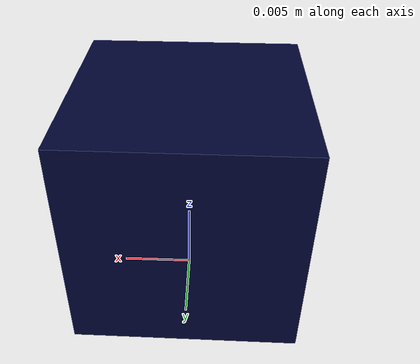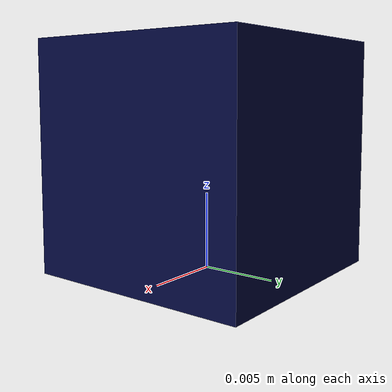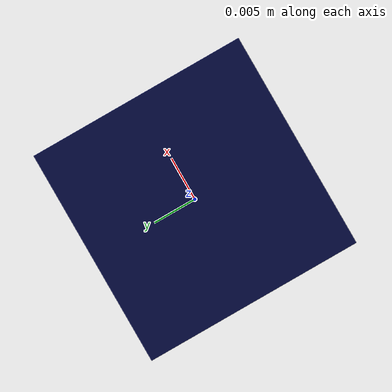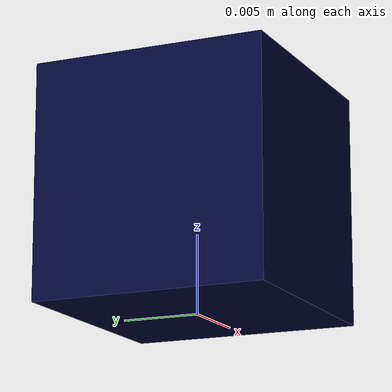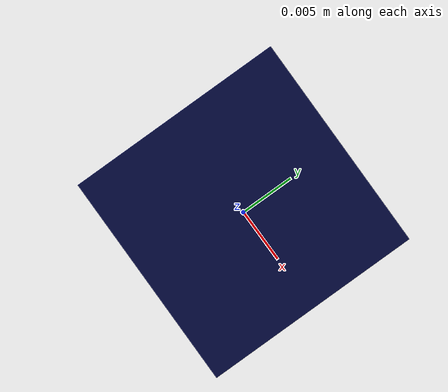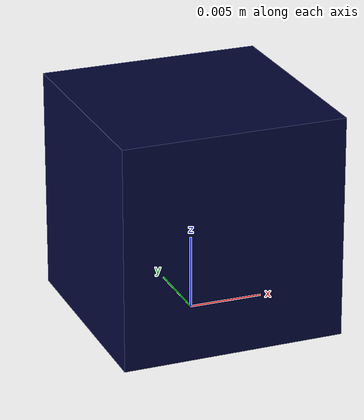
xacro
<?xml version="1.0"?>
<robot xmlns:xacro="http://www.ros.org/wiki/xacro" name="sensors">

    <!-- properties -->
    <xacro:property name="sensor_length" value="0.015"/>
    <xacro:property name="sensor_width" value="0.015"/>
    <xacro:property name="sensor_height" value="0.015"/>

    <!-- colours materials -->
    <material name="darknavy" ><color rgba="0.0 0.01568627450980392 0.20784313725490197 1.0" /></material>

    <!-- sensor frame  -->
    <link name="base_scan">
        <visual>
            <origin xyz="0.0 0.0 ${sensor_height/2.0}" rpy="0.0 0.0 0.0"/>
            <geometry>
                <box size="${sensor_length} ${sensor_width} ${sensor_height}"/>
            </geometry>
            <material name="darknavy"/>
        </visual>
        <xacro:box_inertia m='0.25' l='${correction * sensor_length}' w='${correction * sensor_width}' h='${correction * sensor_height}' xyz="0.0 0.0 ${sensor_height/2.0}" rpy="0.0 0.0 0.0"/>
    </link>

<!-- ultrsonic sensor -->

    <!-- Adding a gazebo sensor -->

</robot>
